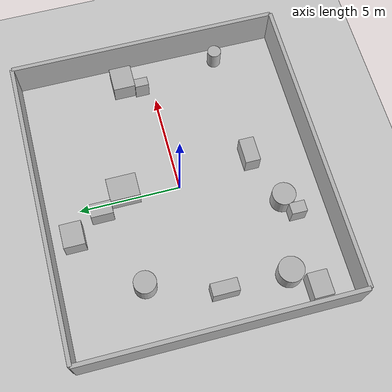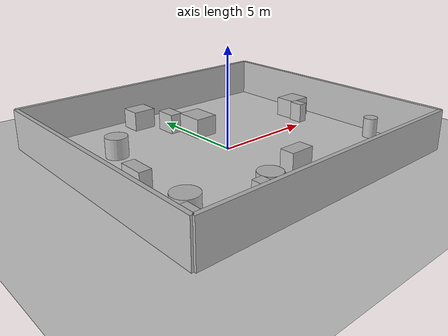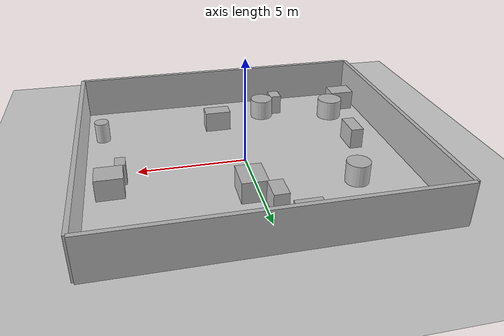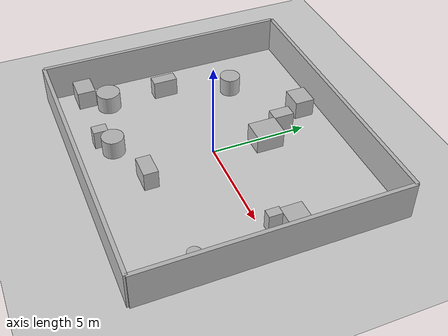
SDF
<?xml version="1.0"?>
<sdf version="1.6">
  <world name="env_40">

    <include><uri>model://ground_plane</uri></include>
    <include><uri>model://sun</uri></include>

    <!-- WALLS -->
    <model name="wall_north"><static>true</static><pose>0 6.671280078954787 1 0 0 0</pose>
      <link name="link"><collision name="collision">
        <geometry><box><size>14.784490103666876 0.2 2</size></box></geometry>
      </collision><visual name="visual">
        <geometry><box><size>14.784490103666876 0.2 2</size></box></geometry>
      </visual></link>
    </model>

    <model name="wall_south"><static>true</static><pose>0 -6.671280078954787 1 0 0 0</pose>
      <link name="link"><collision name="collision">
        <geometry><box><size>14.784490103666876 0.2 2</size></box></geometry>
      </collision><visual name="visual">
        <geometry><box><size>14.784490103666876 0.2 2</size></box></geometry>
      </visual></link>
    </model>

    <model name="wall_east"><static>true</static><pose>7.392245051833438 0 1 0 0 1.57</pose>
      <link name="link"><collision name="collision">
        <geometry><box><size>13.342560157909574 0.2 2</size></box></geometry>
      </collision><visual name="visual">
        <geometry><box><size>13.342560157909574 0.2 2</size></box></geometry>
      </visual></link>
    </model>

    <model name="wall_west"><static>true</static><pose>-7.392245051833438 0 1 0 0 1.57</pose>
      <link name="link"><collision name="collision">
        <geometry><box><size>13.342560157909574 0.2 2</size></box></geometry>
      </collision><visual name="visual">
        <geometry><box><size>13.342560157909574 0.2 2</size></box></geometry>
      </visual></link>
    </model>

    <!-- SENSOR -->

    <model name="lidar_sensor">
      <static>true</static>
      <pose>2.756232572952351 -3.2111957575610375 0.4 0 0 0</pose>
      <link name="link">
        <sensor name="lidar" type="ray">
          <pose>0 0 0 0 0 0</pose>
          <visualize>true</visualize>
          <always_on>true</always_on>
          <update_rate>10</update_rate>
          <ray>
            <scan><horizontal>
              <samples>90</samples>
              <resolution>1</resolution>
              <min_angle>-3.14159</min_angle>
              <max_angle>3.14159</max_angle>
            </horizontal></scan>
            <range><min>0.15</min><max>20.0</max><resolution>0.01</resolution></range>
          </ray>
          <plugin name="lidar_plugin" filename="liblidar_plugin.so"/>
        </sensor>
      </link>
    </model>

    <!-- OBSTACLES -->

    <model name="obstacle_0">
      <static>true</static>
      <pose>6.191916227039654 1.4411734786933836 0.5 0 0 0</pose>
      <link name="link">
        <collision name="collision">
          <geometry><box><size>1.22 1.09 1.0</size></box></geometry>
        </collision>
        <visual name="visual">
          <geometry><box><size>1.22 1.09 1.0</size></box></geometry>
        </visual>
      </link>
    </model>

    <model name="obstacle_1">
      <static>true</static>
      <pose>-2.710025154681243 -5.035148135941818 0.5 0 0 0</pose>
      <link name="link">
        <collision name="collision">
          <geometry><box><size>0.56 0.75 1.0</size></box></geometry>
        </collision>
        <visual name="visual">
          <geometry><box><size>0.56 0.75 1.0</size></box></geometry>
        </visual>
      </link>
    </model>

    <model name="obstacle_2">
      <static>true</static>
      <pose>5.702203851558663 0.5633805341158808 0.5 0 0 0</pose>
      <link name="link">
        <collision name="collision">
          <geometry><box><size>0.46 0.69 1.0</size></box></geometry>
        </collision>
        <visual name="visual">
          <geometry><box><size>0.46 0.69 1.0</size></box></geometry>
        </visual>
      </link>
    </model>

    <model name="obstacle_3">
      <static>true</static>
      <pose>-1.8939707794595044 -4.598607428483447 0.5 0 0 0</pose>
      <link name="link">
        <collision name="collision">
          <geometry><cylinder><radius>0.57</radius><length>1.0</length></cylinder></geometry>
        </collision>
        <visual name="visual">
          <geometry><cylinder><radius>0.57</radius><length>1.0</length></cylinder></geometry>
        </visual>
      </link>
    </model>

    <model name="obstacle_4">
      <static>true</static>
      <pose>-0.46879543330496265 3.967841754003201 0.5 0 0 0</pose>
      <link name="link">
        <collision name="collision">
          <geometry><box><size>0.67 1.08 1.0</size></box></geometry>
        </collision>
        <visual name="visual">
          <geometry><box><size>0.67 1.08 1.0</size></box></geometry>
        </visual>
      </link>
    </model>

    <model name="obstacle_5">
      <static>true</static>
      <pose>-5.496199805221396 -3.804300974930791 0.5 0 0 0</pose>
      <link name="link">
        <collision name="collision">
          <geometry><cylinder><radius>0.62</radius><length>1.0</length></cylinder></geometry>
        </collision>
        <visual name="visual">
          <geometry><cylinder><radius>0.62</radius><length>1.0</length></cylinder></geometry>
        </visual>
      </link>
    </model>

    <model name="obstacle_6">
      <static>true</static>
      <pose>-6.462486739274556 -4.872078548190416 0.5 0 0 0</pose>
      <link name="link">
        <collision name="collision">
          <geometry><box><size>1.2 0.95 1.0</size></box></geometry>
        </collision>
        <visual name="visual">
          <geometry><box><size>1.2 0.95 1.0</size></box></geometry>
        </visual>
      </link>
    </model>

    <model name="obstacle_7">
      <static>true</static>
      <pose>-5.531635331583401 -0.662106744416227 0.5 0 0 0</pose>
      <link name="link">
        <collision name="collision">
          <geometry><box><size>0.61 1.28 1.0</size></box></geometry>
        </collision>
        <visual name="visual">
          <geometry><box><size>0.61 1.28 1.0</size></box></geometry>
        </visual>
      </link>
    </model>

    <model name="obstacle_8">
      <static>true</static>
      <pose>-4.40842906761171 2.7802086631755447 0.5 0 0 0</pose>
      <link name="link">
        <collision name="collision">
          <geometry><cylinder><radius>0.54</radius><length>1.0</length></cylinder></geometry>
        </collision>
        <visual name="visual">
          <geometry><cylinder><radius>0.54</radius><length>1.0</length></cylinder></geometry>
        </visual>
      </link>
    </model>

    <model name="obstacle_9">
      <static>true</static>
      <pose>6.5331229170024265 -3.5111521338531517 0.5 0 0 0</pose>
      <link name="link">
        <collision name="collision">
          <geometry><cylinder><radius>0.34</radius><length>1.0</length></cylinder></geometry>
        </collision>
        <visual name="visual">
          <geometry><cylinder><radius>0.34</radius><length>1.0</length></cylinder></geometry>
        </visual>
      </link>
    </model>

    <model name="obstacle_10">
      <static>true</static>
      <pose>0.3470304219543703 2.7207637947897485 0.5 0 0 0</pose>
      <link name="link">
        <collision name="collision">
          <geometry><box><size>1.17 1.45 1.0</size></box></geometry>
        </collision>
        <visual name="visual">
          <geometry><box><size>1.17 1.45 1.0</size></box></geometry>
        </visual>
      </link>
    </model>

    <model name="obstacle_11">
      <static>true</static>
      <pose>0.7128377015049656 -3.675456840965403 0.5 0 0 0</pose>
      <link name="link">
        <collision name="collision">
          <geometry><box><size>1.26 0.74 1.0</size></box></geometry>
        </collision>
        <visual name="visual">
          <geometry><box><size>1.26 0.74 1.0</size></box></geometry>
        </visual>
      </link>
    </model>

    <model name="obstacle_12">
      <static>true</static>
      <pose>-1.3703197679385202 5.513428328361561 0.5 0 0 0</pose>
      <link name="link">
        <collision name="collision">
          <geometry><box><size>1.17 1.03 1.0</size></box></geometry>
        </collision>
        <visual name="visual">
          <geometry><box><size>1.17 1.03 1.0</size></box></geometry>
        </visual>
      </link>
    </model>

  </world>
</sdf>
